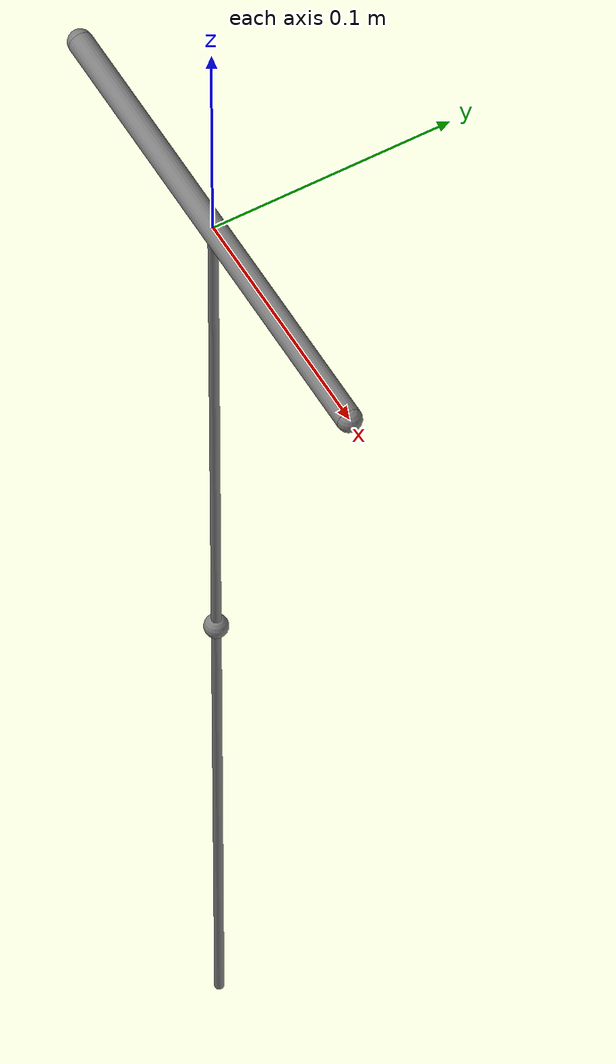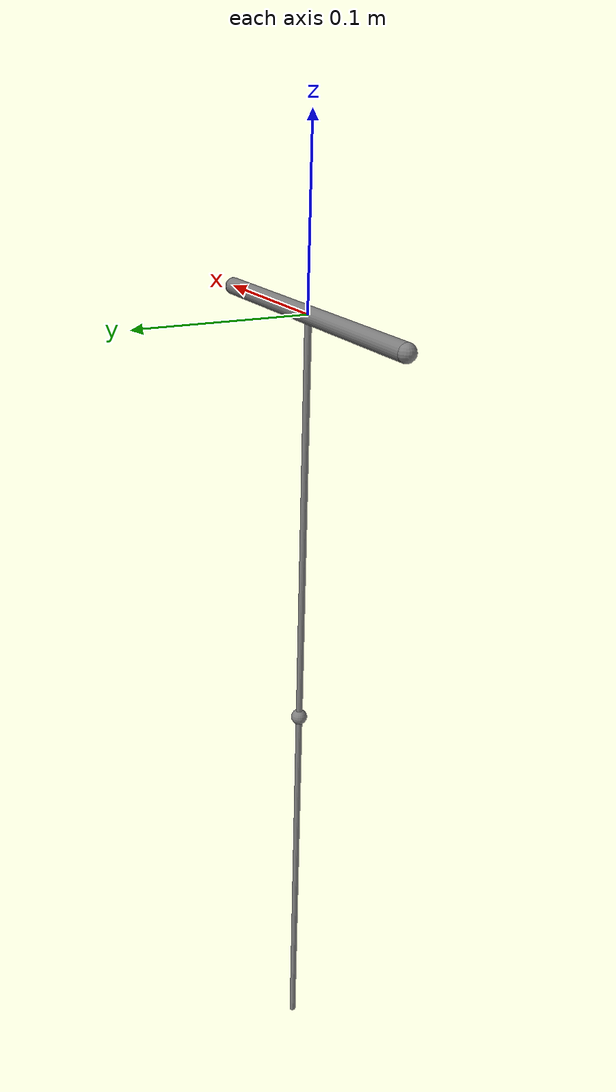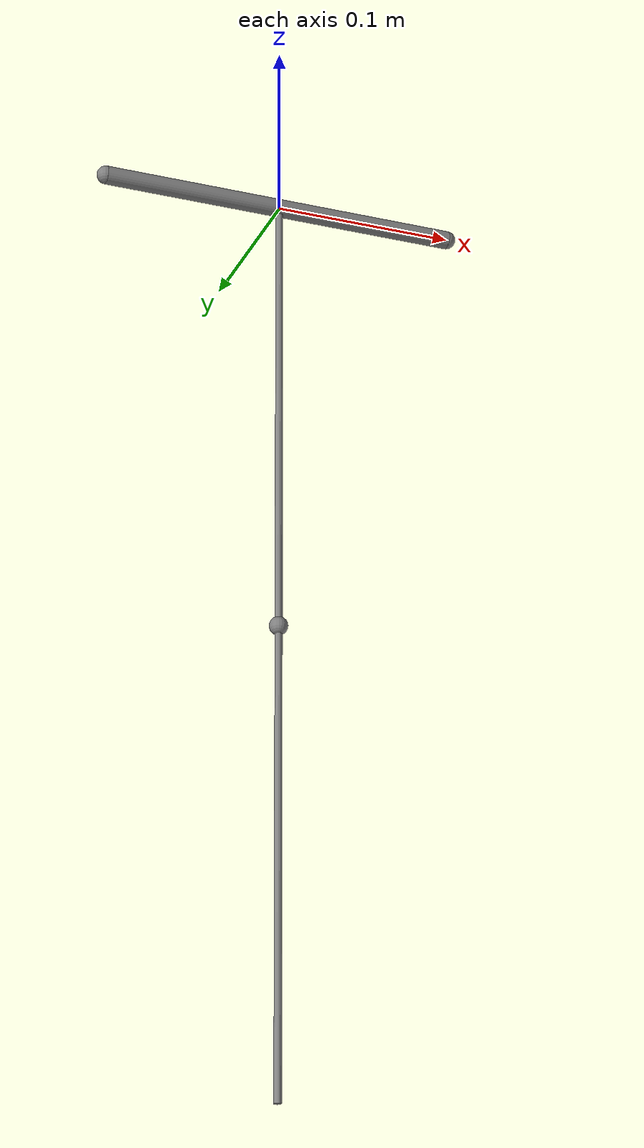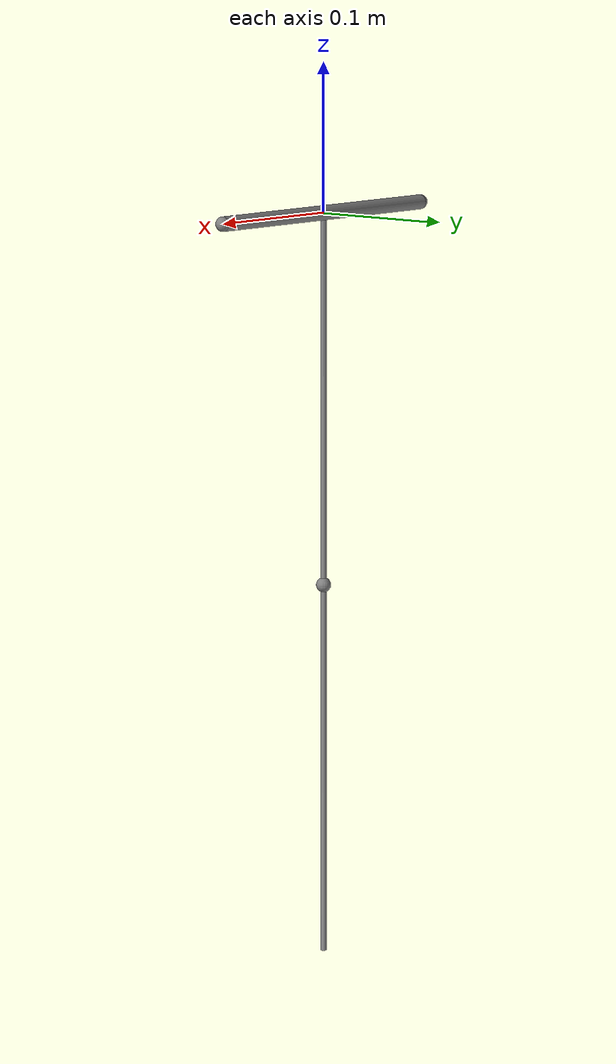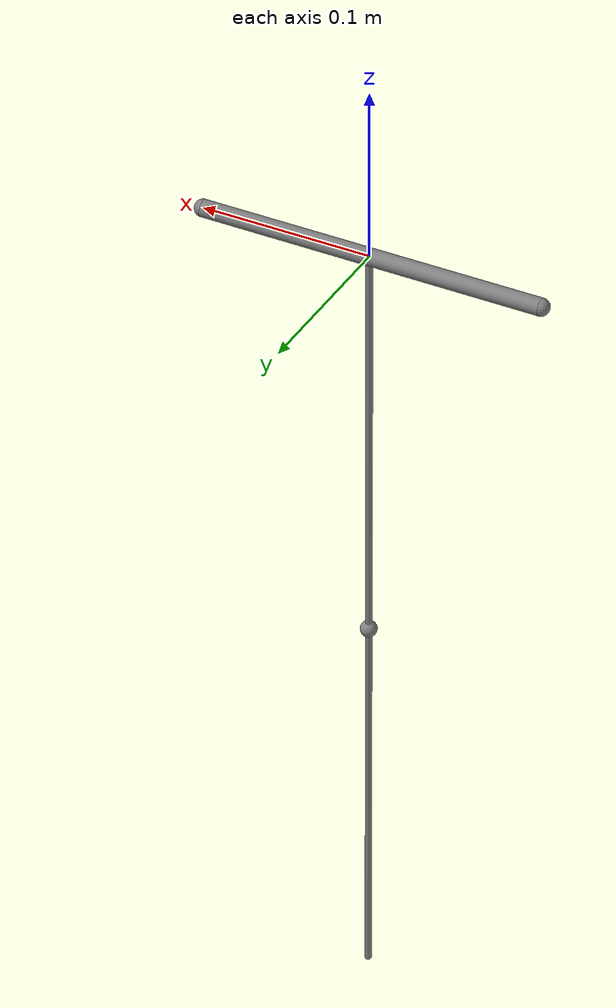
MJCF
<mujoco>
    <compiler angle = "degree"/>
    <option>
        <flag gravity = "enable" contact = "disable"/>

    </option>

    <option density = "1.2" viscosity = "0.2"/>

    <asset>
        <texture name="grid" type="2d" builtin="checker" rgb1=".1 .2 .3"
            rgb2=".2 .3 .4" width="300" height="300" mark="none"/>
        <material name="grid" texture="grid" texrepeat="1 1"
            texuniform="true" reflectance=".2"/>
    </asset>

    <worldbody>

        <body name = "prop_bar" gravcomp = "0">
            <joint name = "prop_free_joint" type = "free"/>
            <geom name = "propeller_body" type = "cylinder" size = ".005 .1" zaxis = "1 0 0" mass = "1"/>

            <site name = "IMU_1_loc" pos = ".1 0 0"/>
            <site name = "prop_1" pos = "-.1 0 0"/>
            <site name = "prop_2" pos = ".1 0 0"/>

            <body name = "leg_1"  gravcomp = "0">
                <joint name = "leg_1_joint" type = "hinge" axis = "0 1 0" pos = "0 0 0"/>
                <geom name = "leg_1_stick" type = "cylinder" fromto = "0 0 0 0 0 -.5" size = ".002" mass = "1"/>
                <site name = "IMU_2_loc" pos = "0 0 -0.25"/>
            </body>
        </body>

    </worldbody>

    <actuator>
        <motor name = "propeller1" site = "prop_1" gear = "0 0 1 0 0 0"/>
        <motor name = "propeller2" site = "prop_2" gear = "0 0 1 0 0 0"/>
    </actuator>

    <sensor>
        <accelerometer name = "IMU_1_acc" site = "IMU_1_loc" noise = ".01"/>
        <gyro name = "IMU_1_gyro" site = "IMU_1_loc" noise = ".01"/>

        <accelerometer name = "IMU_2_acc" site = "IMU_2_loc" noise = ".01"/>
        <gyro name = "IMU_2_gyro" site = "IMU_2_loc" noise = ".01"/>
    </sensor>

</mujoco>
